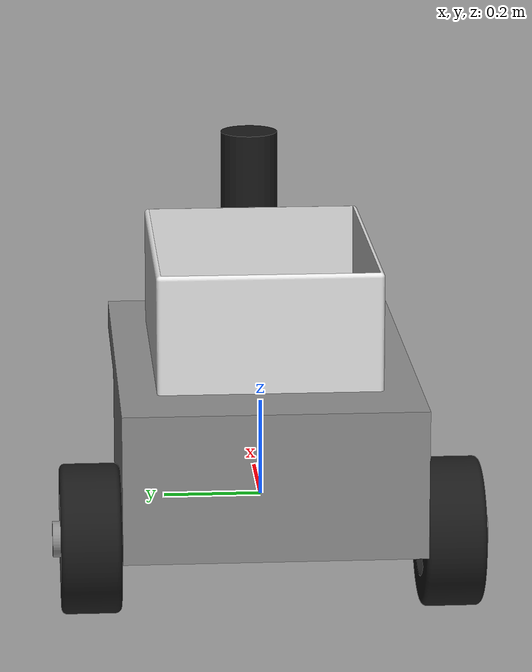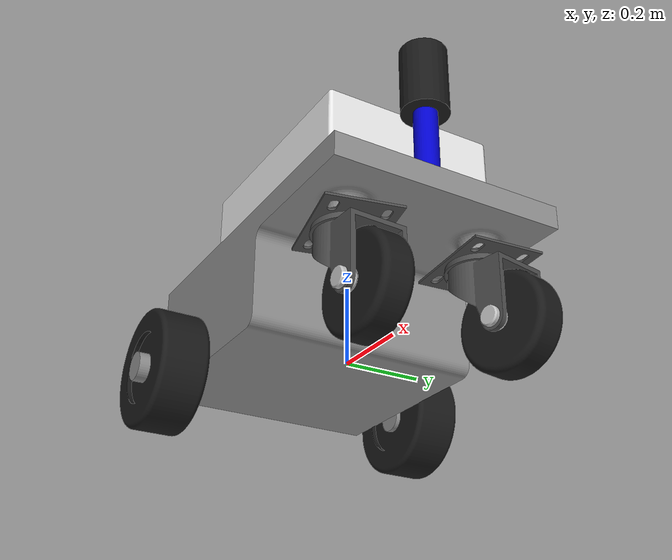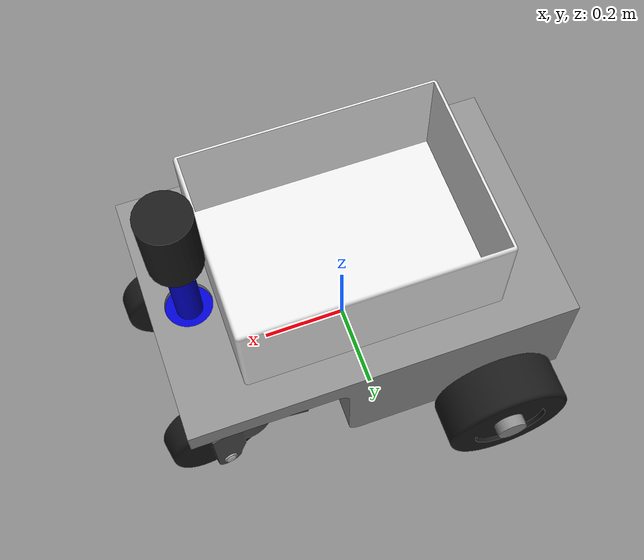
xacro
<?xml version="1.0"?>
<robot name="hospital_robot" xmlns:xacro="http://www.ros.org/wiki/xacro">

  <!-- ==================== ROBOT NAME PARAMETER ==================== -->
  <!-- Pass robot_name:=rover1 or robot_name:=rover2 when spawning -->
  <xacro:arg name="robot_name" default="hospital_robot"/>
  <xacro:property name="robot_ns" value="$(arg robot_name)"/>

  <!-- ==================== MATERIALS ==================== -->
  <material name="grey">      <color rgba="0.55 0.55 0.55 1.0"/></material>
  <material name="dark_grey"> <color rgba="0.30 0.30 0.30 1.0"/></material>
  <material name="black">     <color rgba="0.10 0.10 0.10 1.0"/></material>
  <material name="blue">      <color rgba="0.00 0.00 0.80 1.0"/></material>
  <material name="white">     <color rgba="0.90 0.90 0.90 1.0"/></material>
  <material name="silver">    <color rgba="0.75 0.75 0.75 1.0"/></material>

  <!-- ==================== CHASSIS (base_link) ==================== -->
  <!-- Linear ×0.6: collision origin z=0.168, box 0.900×0.870×0.336 -->
  <!-- Mass ×0.216: 1250×0.216=270.0                                 -->
  <!-- Inertia ×0.07776: ixx=266.875×0.07776=20.749, etc.           -->
  <link name="base_link">
    <visual>
      <origin xyz="0 0 0" rpy="1.5708 0 0"/>
      <geometry>
        <mesh filename="package://hospital_robot_description/meshes/chassis.stl"
              scale="0.003 0.003 0.003"/>
      </geometry>
      <material name="grey"/>
    </visual>
    <collision>
      <origin xyz="0 0 0.168" rpy="0 0 0"/>
      <geometry><box size="0.900 0.870 0.336"/></geometry>
    </collision>
    <inertial>
      <mass value="270.0"/>
      <origin xyz="0 0 0.168"/>
      <inertia ixx="20.749"  ixy="0" ixz="0"
               iyy="18.745"  iyz="0"
               izz="35.438"/>
    </inertial>
  </link>

  <!-- ==================== PAYLOAD BOX ==================== -->
  <!-- Linear ×0.6: joint+collision origin z=0.420, box 0.600×0.450×0.240 -->
  <!-- Mass ×0.216: 125×0.216=27.0                                          -->
  <!-- Inertia ×0.07776: 15.625×0.07776=1.215                               -->
  <link name="payload_box">
    <visual>
      <origin xyz="0 0 0" rpy="1.5708 0 0"/>
      <geometry>
        <mesh filename="package://hospital_robot_description/meshes/payload_box.stl"
              scale="0.003 0.003 0.003"/>
      </geometry>
      <material name="white"/>
    </visual>
    <collision>
      <origin xyz="0 0 0.420" rpy="0 0 0"/>
      <geometry><box size="0.600 0.450 0.240"/></geometry>
    </collision>
    <inertial>
      <mass value="27.0"/>
      <origin xyz="0 0 0.420"/>
      <inertia ixx="1.215" ixy="0" ixz="0"
               iyy="1.215" iyz="0"
               izz="1.215"/>
    </inertial>
  </link>
  <joint name="payload_box_joint" type="fixed">
    <parent link="base_link"/>
    <child link="payload_box"/>
    <origin xyz="0 0 0" rpy="0 0 0"/>
  </joint>

  <!-- ==================== LIDAR MOUNT ==================== -->
  <!-- Linear ×0.6: collision origin (0.360, 0, 0.435), cyl r=0.072 l=0.330 -->
  <!-- Mass ×0.216: 25×0.216=5.4                                              -->
  <!-- Inertia ×0.07776: 0.3125×0.07776=0.02430                               -->
  <link name="lidar_mount">
    <visual>
      <origin xyz="0 0 0" rpy="1.5708 0 0"/>
      <geometry>
        <mesh filename="package://hospital_robot_description/meshes/lidar_mount.stl"
              scale="0.003 0.003 0.003"/>
      </geometry>
      <material name="blue"/>
    </visual>
    <collision>
      <origin xyz="0.360 0 0.435" rpy="0 0 0"/>
      <geometry><cylinder radius="0.072" length="0.330"/></geometry>
    </collision>
    <inertial>
      <mass value="5.4"/>
      <origin xyz="0.360 0 0.435"/>
      <inertia ixx="0.02430" ixy="0" ixz="0"
               iyy="0.02430" iyz="0"
               izz="0.02430"/>
    </inertial>
  </link>
  <joint name="lidar_mount_joint" type="fixed">
    <parent link="base_link"/>
    <child link="lidar_mount"/>
    <origin xyz="0 0 0" rpy="0 0 0"/>
  </joint>

  <!-- ==================== LEFT DRIVE WHEEL ==================== -->
  <!-- Joint ×0.6: (-0.276, +0.360, 0)                            -->
  <!-- Visual offset = -(joint xyz) = (0.276, -0.360, 0)           -->
  <!-- Collision: cyl r=0.150 l=0.120                               -->
  <!-- Mass ×0.216: 62.5×0.216=13.5                                 -->
  <!-- Inertia ×0.07776: ixx=0.9375×0.07776=0.07290, izz=1.875×0.07776=0.14580 -->
  <link name="left_wheel">
    <visual>
      <origin xyz="0.276 -0.360 0" rpy="1.5708 0 0"/>
      <geometry>
        <mesh filename="package://hospital_robot_description/meshes/wheel_left.stl"
              scale="0.003 0.003 0.003"/>
      </geometry>
      <material name="black"/>
    </visual>
    <collision>
      <origin xyz="0 0 0" rpy="1.5708 0 0"/>
      <geometry><cylinder radius="0.150" length="0.120"/></geometry>
    </collision>
    <inertial>
      <mass value="13.5"/>
      <origin xyz="0 0 0"/>
      <inertia ixx="0.07290" ixy="0" ixz="0"
               iyy="0.07290" iyz="0"
               izz="0.14580"/>
    </inertial>
  </link>
  <joint name="left_wheel_joint" type="continuous">
    <parent link="base_link"/>
    <child link="left_wheel"/>
    <origin xyz="-0.276 0.360 0" rpy="0 0 0"/>
    <axis xyz="0 1 0"/>
    <dynamics damping="5.0" friction="2.0"/>
  </joint>

  <!-- ==================== RIGHT DRIVE WHEEL ==================== -->
  <!-- Joint ×0.6: (-0.276, -0.360, 0)                             -->
  <!-- Visual offset = -(joint xyz) = (0.276, +0.360, 0)            -->
  <link name="right_wheel">
    <visual>
      <origin xyz="0.276 0.360 0" rpy="1.5708 0 0"/>
      <geometry>
        <mesh filename="package://hospital_robot_description/meshes/wheel_right.stl"
              scale="0.003 0.003 0.003"/>
      </geometry>
      <material name="black"/>
    </visual>
    <collision>
      <origin xyz="0 0 0" rpy="1.5708 0 0"/>
      <geometry><cylinder radius="0.150" length="0.120"/></geometry>
    </collision>
    <inertial>
      <mass value="13.5"/>
      <origin xyz="0 0 0"/>
      <inertia ixx="0.07290" ixy="0" ixz="0"
               iyy="0.07290" iyz="0"
               izz="0.14580"/>
    </inertial>
  </link>
  <joint name="right_wheel_joint" type="continuous">
    <parent link="base_link"/>
    <child link="right_wheel"/>
    <origin xyz="-0.276 -0.360 0" rpy="0 0 0"/>
    <axis xyz="0 1 0"/>
    <dynamics damping="5.0" friction="2.0"/>
  </joint>

  <link name="front_caster_1_swivel">

    <visual>                                        <!-- Top fork 1 -->
      <origin xyz="-0.390 0.195 -0.030" rpy="1.5708 0 0"/>
      <geometry>
        <mesh filename="package://hospital_robot_description/meshes/caster1_topfork1.stl"
              scale="0.003 0.003 0.003"/>
      </geometry>
      <material name="dark_grey"/>
    </visual>

    <visual>                                        <!-- Top fork 2 -->
      <origin xyz="-0.390 0.195 -0.030" rpy="1.5708 0 0"/>
      <geometry>
        <mesh filename="package://hospital_robot_description/meshes/caster1_topfork2.stl"
              scale="0.003 0.003 0.003"/>
      </geometry>
      <material name="dark_grey"/>
    </visual>

    <visual>                                        <!-- Shaft -->
      <origin xyz="-0.390 0.195 -0.030" rpy="1.5708 0 0"/>
      <geometry>
        <mesh filename="package://hospital_robot_description/meshes/caster1_shaft.stl"
              scale="0.003 0.003 0.003"/>
      </geometry>
      <material name="silver"/>
    </visual>

    <visual>                                        <!-- Bash plate 2 -->
      <origin xyz="-0.390 0.195 -0.030" rpy="1.5708 0 0"/>
      <geometry>
        <mesh filename="package://hospital_robot_description/meshes/caster1_bash2.stl"
              scale="0.003 0.003 0.003"/>
      </geometry>
      <material name="silver"/>
    </visual>

    <visual>                                        <!-- Bash plate 3 -->
      <origin xyz="-0.390 0.195 -0.030" rpy="1.5708 0 0"/>
      <geometry>
        <mesh filename="package://hospital_robot_description/meshes/caster1_bash3.stl"
              scale="0.003 0.003 0.003"/>
      </geometry>
      <material name="silver"/>
    </visual>

    <visual>                                        <!-- Bearing 1 -->
      <origin xyz="-0.390 0.195 -0.030" rpy="1.5708 0 0"/>
      <geometry>
        <mesh filename="package://hospital_robot_description/meshes/caster1_bearing1.stl"
              scale="0.003 0.003 0.003"/>
      </geometry>
      <material name="silver"/>
    </visual>

    <visual>                                        <!-- Bearing 2 -->
      <origin xyz="-0.390 0.195 -0.030" rpy="1.5708 0 0"/>
      <geometry>
        <mesh filename="package://hospital_robot_description/meshes/caster1_bearing2.stl"
              scale="0.003 0.003 0.003"/>
      </geometry>
      <material name="silver"/>
    </visual>

    <visual>                                        <!-- Snap ring -->
      <origin xyz="-0.390 0.195 -0.030" rpy="1.5708 0 0"/>
      <geometry>
        <mesh filename="package://hospital_robot_description/meshes/caster1_snapring.stl"
              scale="0.003 0.003 0.003"/>
      </geometry>
      <material name="silver"/>
    </visual>

    <!-- Collision: cyl r=0.045 l=0.090, origin z=-0.075  [×0.6] -->
    <collision>
      <origin xyz="0 0 -0.075" rpy="0 0 0"/>
      <geometry><cylinder radius="0.045" length="0.090"/></geometry>
    </collision>
    <!-- Mass ×0.216: 6.25×0.216=1.350  Inertia ×0.07776: 0.046875×0.07776=0.003645 -->
    <inertial>
      <mass value="1.350"/>
      <origin xyz="0 0 -0.075"/>
      <inertia ixx="0.003645" ixy="0" ixz="0"
               iyy="0.003645" iyz="0"
               izz="0.003645"/>
    </inertial>
  </link>

  <!-- CASTER 1 SWIVEL JOINT — steers around Z axis -->
  <joint name="front_caster_1_swivel_joint" type="continuous">
    <parent link="base_link"/>
    <child link="front_caster_1_swivel"/>
    <origin xyz="0.390 -0.195 0.030" rpy="0 0 0"/>
    <axis xyz="0 0 1"/>
    <dynamics damping="1.0" friction="0.5"/>
  </joint>

  <link name="front_caster_1_wheel">

    <visual>                                        <!-- Fork -->
      <origin xyz="-0.390 0.195 0.120" rpy="1.5708 0 0"/>
      <geometry>
        <mesh filename="package://hospital_robot_description/meshes/caster1_fork.stl"
              scale="0.003 0.003 0.003"/>
      </geometry>
      <material name="dark_grey"/>
    </visual>

    <visual>                                        <!-- Wheel -->
      <origin xyz="-0.390 0.195 0.120" rpy="1.5708 0 0"/>
      <geometry>
        <mesh filename="package://hospital_robot_description/meshes/caster1_wheel.stl"
              scale="0.003 0.003 0.003"/>
      </geometry>
      <material name="black"/>
    </visual>

    <collision>
      <origin xyz="0 0 0.090" rpy="0 0 0"/>
      <geometry><sphere radius="0.120"/></geometry>
    </collision>
    <inertial>
      <mass value="1.350"/>
      <origin xyz="0 0 0.090"/>
      <inertia ixx="0.003645" ixy="0" ixz="0"
               iyy="0.003645" iyz="0"
               izz="0.003645"/>
    </inertial>
  </link>

  <!-- CASTER 1 WHEEL JOINT — rolls around Y axis -->
  <joint name="front_caster_1_wheel_joint" type="continuous">
    <parent link="front_caster_1_swivel"/>
    <child link="front_caster_1_wheel"/>
    <origin xyz="0 0 -0.150" rpy="0 0 0"/>
    <axis xyz="0 1 0"/>
    <dynamics damping="0.5" friction="0.3"/>
  </joint>

  <link name="front_caster_3_swivel">

    <visual>                                        <!-- Top fork 1 -->
      <origin xyz="-0.390 -0.195 -0.105" rpy="1.5708 0 0"/>
      <geometry>
        <mesh filename="package://hospital_robot_description/meshes/caster3_topfork1.stl"
              scale="0.003 0.003 0.003"/>
      </geometry>
      <material name="dark_grey"/>
    </visual>

    <visual>                                        <!-- Top fork 2 -->
      <origin xyz="-0.390 -0.195 -0.105" rpy="1.5708 0 0"/>
      <geometry>
        <mesh filename="package://hospital_robot_description/meshes/caster3_topfork2.stl"
              scale="0.003 0.003 0.003"/>
      </geometry>
      <material name="dark_grey"/>
    </visual>

    <visual>                                        <!-- Shaft -->
      <origin xyz="-0.390 -0.195 -0.105" rpy="1.5708 0 0"/>
      <geometry>
        <mesh filename="package://hospital_robot_description/meshes/caster3_shaft.stl"
              scale="0.003 0.003 0.003"/>
      </geometry>
      <material name="silver"/>
    </visual>

    <visual>                                        <!-- Bash plate 2 -->
      <origin xyz="-0.390 -0.195 -0.105" rpy="1.5708 0 0"/>
      <geometry>
        <mesh filename="package://hospital_robot_description/meshes/caster3_bash2.stl"
              scale="0.003 0.003 0.003"/>
      </geometry>
      <material name="silver"/>
    </visual>

    <visual>                                        <!-- Bash plate 3 -->
      <origin xyz="-0.390 -0.195 -0.105" rpy="1.5708 0 0"/>
      <geometry>
        <mesh filename="package://hospital_robot_description/meshes/caster3_bash3.stl"
              scale="0.003 0.003 0.003"/>
      </geometry>
      <material name="silver"/>
    </visual>

    <visual>                                        <!-- Bearing 1 -->
      <origin xyz="-0.390 -0.195 -0.105" rpy="1.5708 0 0"/>
      <geometry>
        <mesh filename="package://hospital_robot_description/meshes/caster3_bearing1.stl"
              scale="0.003 0.003 0.003"/>
      </geometry>
      <material name="silver"/>
    </visual>

    <visual>                                        <!-- Bearing 2 -->
      <origin xyz="-0.390 -0.195 -0.105" rpy="1.5708 0 0"/>
      <geometry>
        <mesh filename="package://hospital_robot_description/meshes/caster3_bearing2.stl"
              scale="0.003 0.003 0.003"/>
      </geometry>
      <material name="silver"/>
    </visual>

    <visual>                                        <!-- Snap ring -->
      <origin xyz="-0.390 -0.195 -0.105" rpy="1.5708 0 0"/>
      <geometry>
        <mesh filename="package://hospital_robot_description/meshes/caster3_snapring.stl"
              scale="0.003 0.003 0.003"/>
      </geometry>
      <material name="silver"/>
    </visual>

    <collision>
      <origin xyz="0 0 -0.075" rpy="0 0 0"/>
      <geometry><cylinder radius="0.045" length="0.090"/></geometry>
    </collision>
    <inertial>
      <mass value="1.350"/>
      <origin xyz="0 0 -0.075"/>
      <inertia ixx="0.003645" ixy="0" ixz="0"
               iyy="0.003645" iyz="0"
               izz="0.003645"/>
    </inertial>
  </link>

  <!-- CASTER 3 SWIVEL JOINT — steers around Z axis -->
  <joint name="front_caster_3_swivel_joint" type="continuous">
    <parent link="base_link"/>
    <child link="front_caster_3_swivel"/>
    <origin xyz="0.390 0.195 0.105" rpy="0 0 0"/>
    <axis xyz="0 0 1"/>
    <dynamics damping="1.0" friction="0.5"/>
  </joint>

  <link name="front_caster_3_wheel">

    <visual>                                        <!-- Fork -->
      <origin xyz="-0.390 -0.195 0.045" rpy="1.5708 0 0"/>
      <geometry>
        <mesh filename="package://hospital_robot_description/meshes/caster3_fork.stl"
              scale="0.003 0.003 0.003"/>
      </geometry>
      <material name="dark_grey"/>
    </visual>

    <visual>                                        <!-- Wheel -->
      <origin xyz="-0.390 -0.195 0.045" rpy="1.5708 0 0"/>
      <geometry>
        <mesh filename="package://hospital_robot_description/meshes/caster3_wheel.stl"
              scale="0.003 0.003 0.003"/>
      </geometry>
      <material name="black"/>
    </visual>

    <collision>
      <origin xyz="0 0 0.015" rpy="0 0 0"/>
      <geometry><sphere radius="0.120"/></geometry>
    </collision>
    <inertial>
      <mass value="1.350"/>
      <origin xyz="0 0 0"/>
      <inertia ixx="0.003645" ixy="0" ixz="0"
               iyy="0.003645" iyz="0"
               izz="0.003645"/>
    </inertial>
  </link>

  <!-- CASTER 3 WHEEL JOINT — rolls around Y axis -->
  <joint name="front_caster_3_wheel_joint" type="continuous">
    <parent link="front_caster_3_swivel"/>
    <child link="front_caster_3_wheel"/>
    <origin xyz="0 0 -0.150" rpy="0 0 0"/>
    <axis xyz="0 1 0"/>
    <dynamics damping="0.5" friction="0.3"/>
  </joint>

  <!-- ==================== LIDAR SENSOR LINK ==================== -->
  <!-- Cylinder r=0.060 l=0.180  [×0.6]                            -->
  <!-- Joint origin: x=0.360 z=0.495  [lidar_mount 0.360,0,0.435 + 0.060 above] -->
  <!-- Mass ×0.216: 12.5×0.216=2.7  Inertia ×0.07776: 0.3125×0.07776=0.02430  -->
  <link name="lidar_link">
    <visual>
      <origin xyz="0 0 0" rpy="0 0 0"/>
      <geometry><cylinder radius="0.060" length="0.180"/></geometry>
      <material name="black"/>
    </visual>
    <inertial>
      <mass value="2.7"/>
      <origin xyz="0 0 0"/>
      <inertia ixx="0.02430" ixy="0" ixz="0"
              iyy="0.02430" iyz="0"
              izz="0.02430"/>
    </inertial>
  </link>
  <joint name="lidar_joint" type="fixed">
    <parent link="lidar_mount"/>
    <child link="lidar_link"/>
    <origin xyz="0.360 0 0.600" rpy="0 0 0"/>
  </joint>

  <!-- ==================== IGNITION GAZEBO MATERIALS ==================== -->
  <gazebo reference="base_link">
    <visual>
      <material>
        <ambient>0.5 0.5 0.5 1</ambient>
        <diffuse>0.6 0.6 0.6 1</diffuse>
        <specular>0.1 0.1 0.1 1</specular>
      </material>
    </visual>
  </gazebo>

  <gazebo reference="payload_box">
    <visual>
      <material>
        <ambient>0.95 0.95 0.95 1</ambient>
        <diffuse>0.95 0.95 0.95 1</diffuse>
        <specular>0.05 0.05 0.05 1</specular>
      </material>
    </visual>
  </gazebo>

  <gazebo reference="lidar_mount">
    <visual>
      <material>
        <ambient>0.0 0.3 0.8 1</ambient>
        <diffuse>0.0 0.3 0.8 1</diffuse>
        <specular>0.1 0.1 0.1 1</specular>
      </material>
    </visual>
  </gazebo>

  <gazebo reference="lidar_link">
    <visual>
      <material>
        <ambient>0.1 0.1 0.1 1</ambient>
        <diffuse>0.1 0.1 0.1 1</diffuse>
        <specular>0.2 0.2 0.2 1</specular>
      </material>
    </visual>
  </gazebo>

  <gazebo reference="left_wheel">
    <visual>
      <material>
        <ambient>0.1 0.1 0.1 1</ambient>
        <diffuse>0.15 0.15 0.15 1</diffuse>
        <specular>0.05 0.05 0.05 1</specular>
      </material>
    </visual>
    <mu1>0.8</mu1>
    <mu2>0.8</mu2>
  </gazebo>

  <gazebo reference="right_wheel">
    <visual>
      <material>
        <ambient>0.1 0.1 0.1 1</ambient>
        <diffuse>0.15 0.15 0.15 1</diffuse>
        <specular>0.05 0.05 0.05 1</specular>
      </material>
    </visual>
    <mu1>0.8</mu1>
    <mu2>0.8</mu2>
  </gazebo>

  <!-- Swivel links: near-zero friction so casters self-align freely -->
  <gazebo reference="front_caster_1_swivel">
    <mu1>0.0</mu1>
    <mu2>0.0</mu2>
  </gazebo>

  <gazebo reference="front_caster_3_swivel">
    <mu1>0.0</mu1>
    <mu2>0.0</mu2>
  </gazebo>

  <!-- Caster wheels: zero friction on ground contact (passive roll) -->
  <gazebo reference="front_caster_1_wheel">
    <visual>
      <material>
        <ambient>0.2 0.2 0.2 1</ambient>
        <diffuse>0.25 0.25 0.25 1</diffuse>
        <specular>0.3 0.3 0.3 1</specular>
      </material>
    </visual>
    <mu1>0.0</mu1>
    <mu2>0.0</mu2>
  </gazebo>

  <gazebo reference="front_caster_3_wheel">
    <visual>
      <material>
        <ambient>0.2 0.2 0.2 1</ambient>
        <diffuse>0.25 0.25 0.25 1</diffuse>
        <specular>0.3 0.3 0.3 1</specular>
      </material>
    </visual>
    <mu1>0.0</mu1>
    <mu2>0.0</mu2>
  </gazebo>

  <!-- ==================== GAZEBO CLASSIC DIFF DRIVE ==================== -->
  <gazebo>
    <plugin name="diff_drive" filename="libgazebo_ros_diff_drive.so">
      <ros>
        <namespace>${robot_ns}</namespace>
        <remapping>cmd_vel:=wheel_cmd</remapping>
        <remapping>odom:=odom</remapping>
      </ros>
      <left_joint>left_wheel_joint</left_joint>
      <right_joint>right_wheel_joint</right_joint>
      <wheel_separation>0.720</wheel_separation>
      <wheel_diameter>0.300</wheel_diameter>
      <max_wheel_torque>80.0</max_wheel_torque>
      <max_wheel_acceleration>1.0</max_wheel_acceleration>
      <odometry_frame>${robot_ns}/odom</odometry_frame>
      <robot_base_frame>${robot_ns}/base_link</robot_base_frame>
      <publish_odom>true</publish_odom>
      <publish_odom_tf>true</publish_odom_tf>
      <publish_wheel_tf>false</publish_wheel_tf>
      <update_rate>30.0</update_rate>
    </plugin>
  </gazebo>

  <!-- ==================== GAZEBO CLASSIC LIDAR ==================== -->
  <gazebo reference="lidar_link">
    <sensor name="lidar" type="ray">
      <always_on>true</always_on>
      <visualize>true</visualize>
      <update_rate>10</update_rate>
      <ray>
        <scan>
          <horizontal>
            <samples>360</samples>
            <resolution>1</resolution>
            <min_angle>-3.14159265</min_angle>
            <max_angle>3.14159265</max_angle>
          </horizontal>
        </scan>
        <range>
          <min>0.35</min>
          <max>20.0</max>
          <resolution>0.01</resolution>
        </range>
        <noise>
          <type>gaussian</type>
          <mean>0.0</mean>
          <stddev>0.01</stddev>
        </noise>
      </ray>
      <plugin name="scan" filename="libgazebo_ros_ray_sensor.so">
        <ros>
          <namespace>${robot_ns}</namespace>
          <remapping>~/out:=scan</remapping>
        </ros>
        <output_type>sensor_msgs/LaserScan</output_type>
        <frame_name>${robot_ns}/lidar_link</frame_name>
      </plugin>
    </sensor>
  </gazebo>

  <!-- ==================== GAZEBO CLASSIC JOINT STATE PUB ==================== -->
  <gazebo>
    <plugin name="joint_states" filename="libgazebo_ros_joint_state_publisher.so">
      <ros>
        <namespace>${robot_ns}</namespace>
        <remapping>~/out:=joint_states</remapping>
      </ros>
      <update_rate>30</update_rate>
      <joint_name>left_wheel_joint</joint_name>
      <joint_name>right_wheel_joint</joint_name>
      <joint_name>front_caster_1_swivel_joint</joint_name>
      <joint_name>front_caster_1_wheel_joint</joint_name>
      <joint_name>front_caster_3_swivel_joint</joint_name>
      <joint_name>front_caster_3_wheel_joint</joint_name>
    </plugin>
  </gazebo>

</robot>
